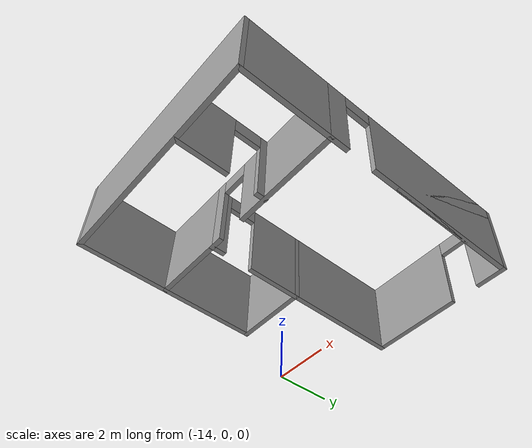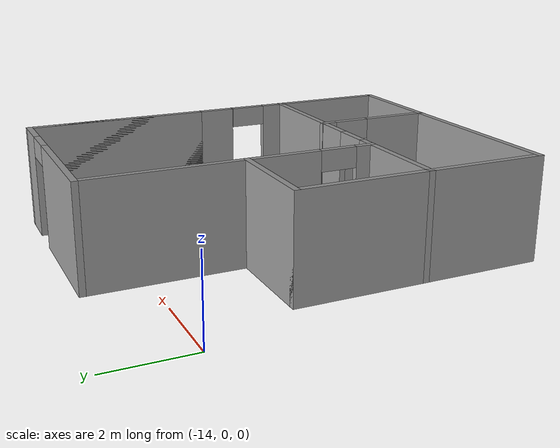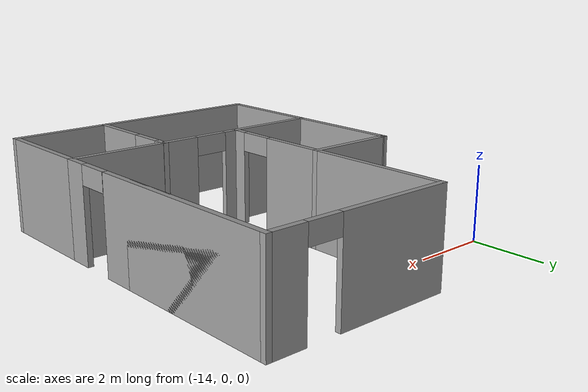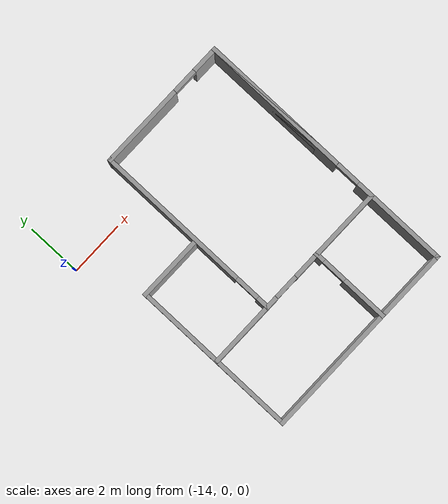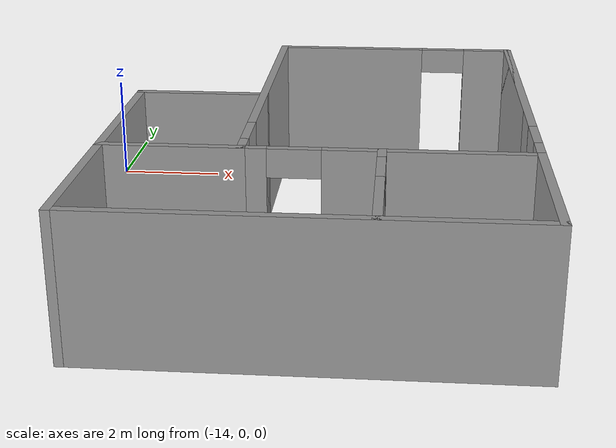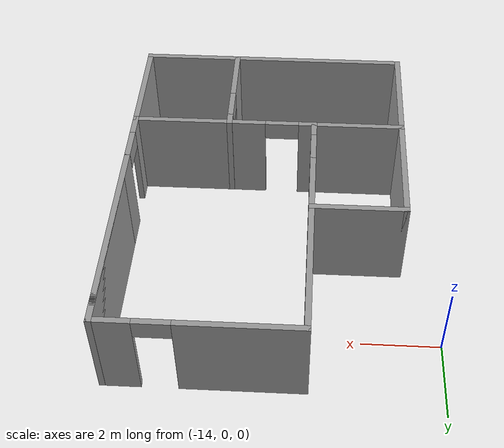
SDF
<?xml version='1.0'?>
<sdf version='1.6'>
  <model name='Kanaloa_Lab'>
    <pose frame=''>-6.54155 -3.4034 0 0 -0 0</pose>
    <link name='Wall_0'>
      <pose frame=''>-4.11655 1.425 0 0 -0 -1.5708</pose>
      <visual name='Wall_0_Visual_0'>
        <pose frame=''>-0.703165 0 1.25 0 -0 0</pose>
        <geometry>
          <box>
            <size>5.59367 0.15 2.5</size>
          </box>
        </geometry>
        <material>
          <script>
            <uri>file://media/materials/scripts/gazebo.material</uri>
            <name>Gazebo/Grey</name>
          </script>
          <ambient>1 1 1 1</ambient>
        </material>
        <meta>
          <layer>0</layer>
        </meta>
      </visual>
      <collision name='Wall_0_Collision_0'>
        <geometry>
          <box>
            <size>5.59367 0.15 2.5</size>
          </box>
        </geometry>
        <pose frame=''>-0.703165 0 1.25 0 -0 0</pose>
      </collision>
      <visual name='Wall_0_Visual_1'>
        <pose frame=''>3.24683 0 1.25 0 -0 0</pose>
        <geometry>
          <box>
            <size>0.50633 0.15 2.5</size>
          </box>
        </geometry>
        <material>
          <script>
            <uri>file://media/materials/scripts/gazebo.material</uri>
            <name>Gazebo/Grey</name>
          </script>
          <ambient>1 1 1 1</ambient>
        </material>
        <meta>
          <layer>0</layer>
        </meta>
      </visual>
      <collision name='Wall_0_Collision_1'>
        <geometry>
          <box>
            <size>0.50633 0.15 2.5</size>
          </box>
        </geometry>
        <pose frame=''>3.24683 0 1.25 0 -0 0</pose>
      </collision>
      <visual name='Wall_0_Visual_2'>
        <pose frame=''>2.54367 0 2.25 0 -0 0</pose>
        <geometry>
          <box>
            <size>0.9 0.15 0.5</size>
          </box>
        </geometry>
        <material>
          <script>
            <uri>file://media/materials/scripts/gazebo.material</uri>
            <name>Gazebo/Grey</name>
          </script>
          <ambient>1 1 1 1</ambient>
        </material>
        <meta>
          <layer>0</layer>
        </meta>
      </visual>
      <collision name='Wall_0_Collision_2'>
        <geometry>
          <box>
            <size>0.9 0.15 0.5</size>
          </box>
        </geometry>
        <pose frame=''>2.54367 0 2.25 0 -0 0</pose>
      </collision>
    </link>
    <link name='Wall_1'>
      <pose frame=''>-1.69155 -2 0 0 -0 0</pose>
      <visual name='Wall_1_Visual_0'>
        <pose frame=''>-2.2521 0 1.25 0 -0 0</pose>
        <geometry>
          <box>
            <size>0.495795 0.15 2.5</size>
          </box>
        </geometry>
        <material>
          <script>
            <uri>file://media/materials/scripts/gazebo.material</uri>
            <name>Gazebo/Grey</name>
          </script>
          <ambient>1 1 1 1</ambient>
        </material>
        <meta>
          <layer>0</layer>
        </meta>
      </visual>
      <collision name='Wall_1_Collision_0'>
        <geometry>
          <box>
            <size>0.495795 0.15 2.5</size>
          </box>
        </geometry>
        <pose frame=''>-2.2521 0 1.25 0 -0 0</pose>
      </collision>
      <visual name='Wall_1_Visual_1'>
        <pose frame=''>0.697898 0 1.25 0 -0 0</pose>
        <geometry>
          <box>
            <size>3.6042 0.15 2.5</size>
          </box>
        </geometry>
        <material>
          <script>
            <uri>file://media/materials/scripts/gazebo.material</uri>
            <name>Gazebo/Grey</name>
          </script>
          <ambient>1 1 1 1</ambient>
        </material>
        <meta>
          <layer>0</layer>
        </meta>
      </visual>
      <collision name='Wall_1_Collision_1'>
        <geometry>
          <box>
            <size>3.6042 0.15 2.5</size>
          </box>
        </geometry>
        <pose frame=''>0.697898 0 1.25 0 -0 0</pose>
      </collision>
      <visual name='Wall_1_Visual_2'>
        <pose frame=''>-1.55421 0 2.25 0 -0 0</pose>
        <geometry>
          <box>
            <size>0.9 0.15 0.5</size>
          </box>
        </geometry>
        <material>
          <script>
            <uri>file://media/materials/scripts/gazebo.material</uri>
            <name>Gazebo/Grey</name>
          </script>
          <ambient>1 1 1 1</ambient>
        </material>
        <meta>
          <layer>0</layer>
        </meta>
      </visual>
      <collision name='Wall_1_Collision_2'>
        <geometry>
          <box>
            <size>0.9 0.15 0.5</size>
          </box>
        </geometry>
        <pose frame=''>-1.55421 0 2.25 0 -0 0</pose>
      </collision>
    </link>
    <link name='Wall_14'>
      <collision name='Wall_14_Collision'>
        <geometry>
          <box>
            <size>3 0.15 2.5</size>
          </box>
        </geometry>
        <pose frame=''>0 0 1.25 0 -0 0</pose>
      </collision>
      <visual name='Wall_14_Visual'>
        <pose frame=''>0 0 1.25 0 -0 0</pose>
        <geometry>
          <box>
            <size>3 0.15 2.5</size>
          </box>
        </geometry>
        <material>
          <script>
            <uri>file://media/materials/scripts/gazebo.material</uri>
            <name>Gazebo/Grey</name>
          </script>
          <ambient>1 1 1 1</ambient>
        </material>
        <meta>
          <layer>0</layer>
        </meta>
      </visual>
      <pose frame=''>0.733451 -3.425 0 0 -0 -1.5708</pose>
    </link>
    <link name='Wall_15'>
      <collision name='Wall_15_Collision'>
        <geometry>
          <box>
            <size>7.35 0.15 2.5</size>
          </box>
        </geometry>
        <pose frame=''>0 0 1.25 0 -0 0</pose>
      </collision>
      <visual name='Wall_15_Visual'>
        <pose frame=''>0 0 1.25 0 -0 0</pose>
        <geometry>
          <box>
            <size>7.35 0.15 2.5</size>
          </box>
        </geometry>
        <material>
          <script>
            <uri>file://media/materials/scripts/gazebo.material</uri>
            <name>Gazebo/Grey</name>
          </script>
          <ambient>1 1 1 1</ambient>
        </material>
        <meta>
          <layer>0</layer>
        </meta>
      </visual>
      <pose frame=''>-2.86655 -4.85 0 0 -0 3.14159</pose>
    </link>
    <link name='Wall_17'>
      <pose frame=''>-1.81931 -3.41528 0 0 -0 -1.5708</pose>
      <visual name='Wall_17_Visual_0'>
        <pose frame=''>-1.3027 0 1.25 0 -0 0</pose>
        <geometry>
          <box>
            <size>0.394591 0.15 2.5</size>
          </box>
        </geometry>
        <material>
          <script>
            <uri>file://media/materials/scripts/gazebo.material</uri>
            <name>Gazebo/Grey</name>
          </script>
          <ambient>1 1 1 1</ambient>
        </material>
        <meta>
          <layer>0</layer>
        </meta>
      </visual>
      <collision name='Wall_17_Collision_0'>
        <geometry>
          <box>
            <size>0.394591 0.15 2.5</size>
          </box>
        </geometry>
        <pose frame=''>-1.3027 0 1.25 0 -0 0</pose>
      </collision>
      <visual name='Wall_17_Visual_1'>
        <pose frame=''>0.647296 0 1.25 0 -0 0</pose>
        <geometry>
          <box>
            <size>1.70541 0.15 2.5</size>
          </box>
        </geometry>
        <material>
          <script>
            <uri>file://media/materials/scripts/gazebo.material</uri>
            <name>Gazebo/Grey</name>
          </script>
          <ambient>1 1 1 1</ambient>
        </material>
        <meta>
          <layer>0</layer>
        </meta>
      </visual>
      <collision name='Wall_17_Collision_1'>
        <geometry>
          <box>
            <size>1.70541 0.15 2.5</size>
          </box>
        </geometry>
        <pose frame=''>0.647296 0 1.25 0 -0 0</pose>
      </collision>
      <visual name='Wall_17_Visual_2'>
        <pose frame=''>-0.655409 0 2.25 0 -0 0</pose>
        <geometry>
          <box>
            <size>0.9 0.15 0.5</size>
          </box>
        </geometry>
        <material>
          <script>
            <uri>file://media/materials/scripts/gazebo.material</uri>
            <name>Gazebo/Grey</name>
          </script>
          <ambient>1 1 1 1</ambient>
        </material>
        <meta>
          <layer>0</layer>
        </meta>
      </visual>
      <collision name='Wall_17_Collision_2'>
        <geometry>
          <box>
            <size>0.9 0.15 0.5</size>
          </box>
        </geometry>
        <pose frame=''>-0.655409 0 2.25 0 -0 0</pose>
      </collision>
    </link>
    <link name='Wall_2'>
      <pose frame=''>0.733451 1.425 0 0 -0 1.5708</pose>
      <visual name='Wall_2_Visual_0'>
        <pose frame=''>-3.17364 0 1.25 0 -0 0</pose>
        <geometry>
          <box>
            <size>0.652719 0.15 2.5</size>
          </box>
        </geometry>
        <material>
          <script>
            <uri>file://media/materials/scripts/gazebo.material</uri>
            <name>Gazebo/Grey</name>
          </script>
          <ambient>1 1 1 1</ambient>
        </material>
        <meta>
          <layer>0</layer>
        </meta>
      </visual>
      <collision name='Wall_2_Collision_0'>
        <geometry>
          <box>
            <size>0.652719 0.15 2.5</size>
          </box>
        </geometry>
        <pose frame=''>-3.17364 0 1.25 0 -0 0</pose>
      </collision>
      <visual name='Wall_2_Visual_1'>
        <pose frame=''>0.77636 0 1.25 0 -0 0</pose>
        <geometry>
          <box>
            <size>5.44728 0.15 2.5</size>
          </box>
        </geometry>
        <material>
          <script>
            <uri>file://media/materials/scripts/gazebo.material</uri>
            <name>Gazebo/Grey</name>
          </script>
          <ambient>1 1 1 1</ambient>
        </material>
        <meta>
          <layer>0</layer>
        </meta>
      </visual>
      <collision name='Wall_2_Collision_1'>
        <geometry>
          <box>
            <size>5.44728 0.15 2.5</size>
          </box>
        </geometry>
        <pose frame=''>0.77636 0 1.25 0 -0 0</pose>
      </collision>
      <visual name='Wall_2_Visual_2'>
        <pose frame=''>1.22114 0 1.25 0 -0 0</pose>
        <geometry>
          <box>
            <size>4.55773 0.15 2.5</size>
          </box>
        </geometry>
        <material>
          <script>
            <uri>file://media/materials/scripts/gazebo.material</uri>
            <name>Gazebo/Grey</name>
          </script>
          <ambient>1 1 1 1</ambient>
        </material>
        <meta>
          <layer>0</layer>
        </meta>
      </visual>
      <collision name='Wall_2_Collision_2'>
        <geometry>
          <box>
            <size>4.55773 0.15 2.5</size>
          </box>
        </geometry>
        <pose frame=''>1.22114 0 1.25 0 -0 0</pose>
      </collision>
      <visual name='Wall_2_Visual_3'>
        <pose frame=''>-2.40251 0 2.25 0 -0 0</pose>
        <geometry>
          <box>
            <size>0.88955 0.15 0.5</size>
          </box>
        </geometry>
        <material>
          <script>
            <uri>file://media/materials/scripts/gazebo.material</uri>
            <name>Gazebo/Grey</name>
          </script>
          <ambient>1 1 1 1</ambient>
        </material>
        <meta>
          <layer>0</layer>
        </meta>
      </visual>
      <collision name='Wall_2_Collision_3'>
        <geometry>
          <box>
            <size>0.88955 0.15 0.5</size>
          </box>
        </geometry>
        <pose frame=''>-2.40251 0 2.25 0 -0 0</pose>
      </collision>
    </link>
    <link name='Wall_3'>
      <pose frame=''>-1.69155 4.85 0 0 -0 3.14159</pose>
      <visual name='Wall_3_Visual_0'>
        <pose frame=''>-1.99189 0 1.25 0 -0 0</pose>
        <geometry>
          <box>
            <size>1.01621 0.15 2.5</size>
          </box>
        </geometry>
        <material>
          <script>
            <uri>file://media/materials/scripts/gazebo.material</uri>
            <name>Gazebo/Grey</name>
          </script>
          <ambient>1 1 1 1</ambient>
        </material>
        <meta>
          <layer>0</layer>
        </meta>
      </visual>
      <collision name='Wall_3_Collision_0'>
        <geometry>
          <box>
            <size>1.01621 0.15 2.5</size>
          </box>
        </geometry>
        <pose frame=''>-1.99189 0 1.25 0 -0 0</pose>
      </collision>
      <visual name='Wall_3_Visual_1'>
        <pose frame=''>0.958107 0 1.25 0 -0 0</pose>
        <geometry>
          <box>
            <size>3.08379 0.15 2.5</size>
          </box>
        </geometry>
        <material>
          <script>
            <uri>file://media/materials/scripts/gazebo.material</uri>
            <name>Gazebo/Grey</name>
          </script>
          <ambient>1 1 1 1</ambient>
        </material>
        <meta>
          <layer>0</layer>
        </meta>
      </visual>
      <collision name='Wall_3_Collision_1'>
        <geometry>
          <box>
            <size>3.08379 0.15 2.5</size>
          </box>
        </geometry>
        <pose frame=''>0.958107 0 1.25 0 -0 0</pose>
      </collision>
      <visual name='Wall_3_Visual_2'>
        <pose frame=''>-1.03379 0 2.25 0 -0 0</pose>
        <geometry>
          <box>
            <size>0.9 0.15 0.5</size>
          </box>
        </geometry>
        <material>
          <script>
            <uri>file://media/materials/scripts/gazebo.material</uri>
            <name>Gazebo/Grey</name>
          </script>
          <ambient>1 1 1 1</ambient>
        </material>
        <meta>
          <layer>0</layer>
        </meta>
      </visual>
      <collision name='Wall_3_Collision_2'>
        <geometry>
          <box>
            <size>0.9 0.15 0.5</size>
          </box>
        </geometry>
        <pose frame=''>-1.03379 0 2.25 0 -0 0</pose>
      </collision>
    </link>
    <link name='Wall_5'>
      <collision name='Wall_5_Collision'>
        <geometry>
          <box>
            <size>2.5 0.15 2.5</size>
          </box>
        </geometry>
        <pose frame=''>0 0 1.25 0 -0 0</pose>
      </collision>
      <visual name='Wall_5_Visual'>
        <pose frame=''>0 0 1.25 0 -0 0</pose>
        <geometry>
          <box>
            <size>2.5 0.15 2.5</size>
          </box>
        </geometry>
        <material>
          <script>
            <uri>file://media/materials/scripts/gazebo.material</uri>
            <name>Gazebo/Grey</name>
          </script>
          <ambient>1 1 1 1</ambient>
        </material>
        <meta>
          <layer>0</layer>
        </meta>
      </visual>
      <pose frame=''>-5.29155 -2 0 0 -0 3.14159</pose>
    </link>
    <link name='Wall_6'>
      <collision name='Wall_6_Collision'>
        <geometry>
          <box>
            <size>3.25 0.15 2.5</size>
          </box>
        </geometry>
        <pose frame=''>0 0 1.25 0 -0 0</pose>
      </collision>
      <visual name='Wall_6_Visual'>
        <pose frame=''>0 0 1.25 0 -0 0</pose>
        <geometry>
          <box>
            <size>3.25 0.15 2.5</size>
          </box>
        </geometry>
        <material>
          <script>
            <uri>file://media/materials/scripts/gazebo.material</uri>
            <name>Gazebo/Grey</name>
          </script>
          <ambient>1 1 1 1</ambient>
        </material>
        <meta>
          <layer>0</layer>
        </meta>
      </visual>
      <pose frame=''>-6.46655 -0.45 0 0 -0 1.5708</pose>
    </link>
    <link name='Wall_7'>
      <collision name='Wall_7_Collision'>
        <geometry>
          <box>
            <size>2.5 0.15 2.5</size>
          </box>
        </geometry>
        <pose frame=''>0 0 1.25 0 -0 0</pose>
      </collision>
      <visual name='Wall_7_Visual'>
        <pose frame=''>0 0 1.25 0 -0 0</pose>
        <geometry>
          <box>
            <size>2.5 0.15 2.5</size>
          </box>
        </geometry>
        <material>
          <script>
            <uri>file://media/materials/scripts/gazebo.material</uri>
            <name>Gazebo/Grey</name>
          </script>
          <ambient>1 1 1 1</ambient>
        </material>
        <meta>
          <layer>0</layer>
        </meta>
      </visual>
      <pose frame=''>-5.29155 1.1 0 0 -0 0</pose>
    </link>
    <link name='Wall_9'>
      <collision name='Wall_9_Collision'>
        <geometry>
          <box>
            <size>3 0.15 2.5</size>
          </box>
        </geometry>
        <pose frame=''>0 0 1.25 0 -0 0</pose>
      </collision>
      <visual name='Wall_9_Visual'>
        <pose frame=''>0 0 1.25 0 -0 0</pose>
        <geometry>
          <box>
            <size>3 0.15 2.5</size>
          </box>
        </geometry>
        <material>
          <script>
            <uri>file://media/materials/scripts/gazebo.material</uri>
            <name>Gazebo/Grey</name>
          </script>
          <ambient>0.952941 0.952941 0.952941 1</ambient>
        </material>
        <meta>
          <layer>0</layer>
        </meta>
      </visual>
      <pose frame=''>-6.46655 -3.425 0 0 -0 -1.5708</pose>
    </link>
    <static>1</static>
  </model>
</sdf>
